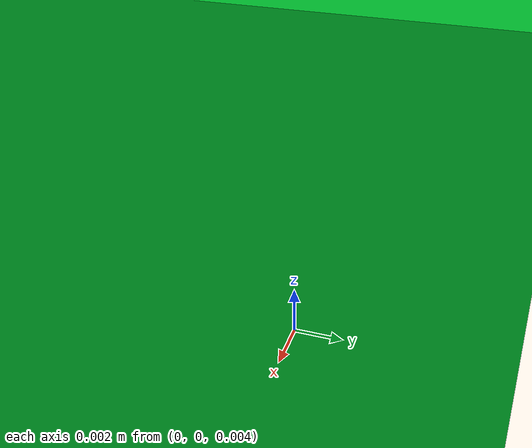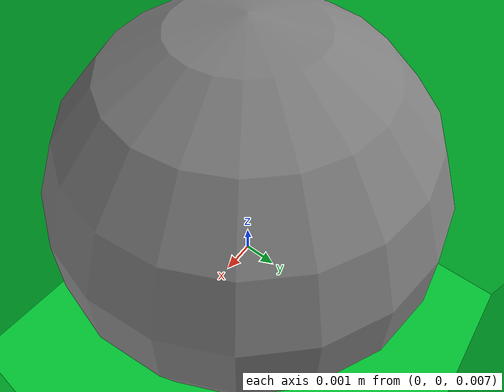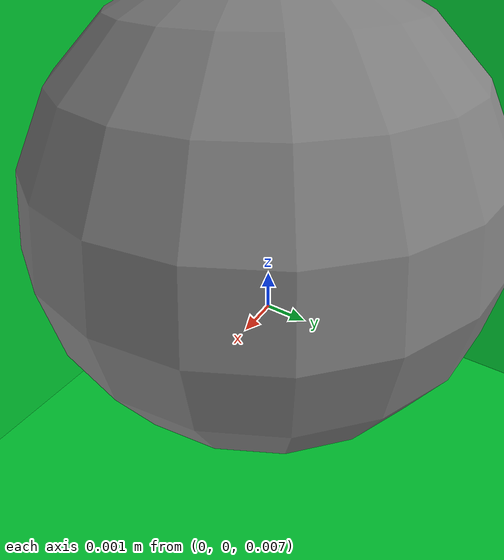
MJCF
<mujoco model="mat">
  <compiler angle="radian" meshdir="assets" autolimits="true"/>

  <option cone="elliptic" impratio="10"/>

  <default>
    <default class="mat">
      <default class="visual">
        <geom group="2" contype="0" conaffinity="0"/>
      </default>
      <default class="collision">
        <geom group="3" condim="3" margin="0.001"/>
      </default>
    </default>
  </default>

  <worldbody>
    <body name="mat_body" childclass="mat">
      <site name="mat_site" pos="0 0 0.01"/>
      <geom type="box" class="visual" pos="0 0 0.01" size="0.12 0.12 0.01" rgba="0 0.8 0.2 1"/>
      <geom type="box" class="collision" pos="0 0 0.01" size="0.12 0.12 0.01"/>
    </body>
  </worldbody>

</mujoco>
